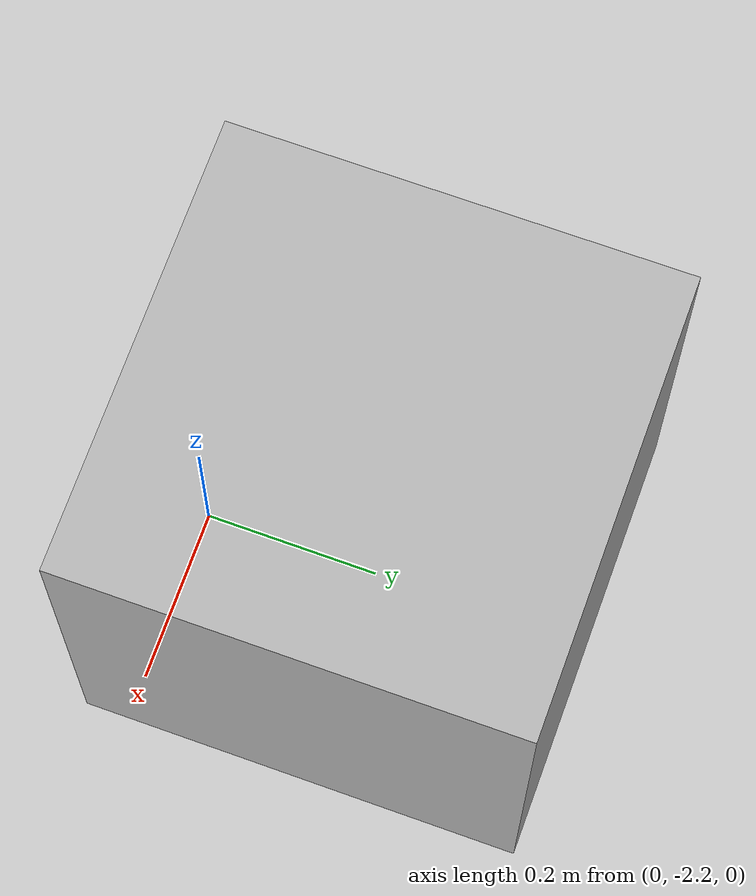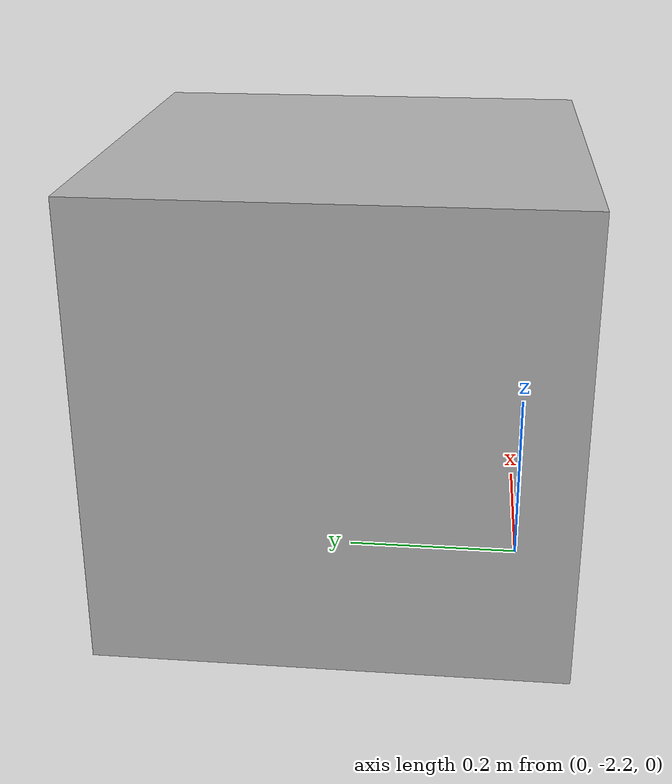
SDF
<?xml version="1.0"?>
<sdf version="1.5">
  <model name="noisy_distorted_camera">
  <pose>0 -2 0.25 0 0 1.57079633</pose>
  <static>false</static>
    <link name="camera_link">

      <visual name="visual">
        <geometry>
          <box>
            <size>0.5 0.5 0.5</size>
          </box>
        </geometry>
      </visual>

      <collision name="collision">
        <geometry>
          <box>
            <size>0.5 0.5 0.5</size>
          </box>
        </geometry>
      </collision>

      <sensor name="camera" type="camera">
        <camera>
          <horizontal_fov>1.047</horizontal_fov>

          <image>
            <width>1920</width>
            <height>1080</height>
            <format>R8G8B8</format>
          </image>

          <clip>
            <near>0.05</near>
            <far>100</far>
          </clip>

          <noise>
            <type>gaussian</type>
            <mean>0.0</mean>
            <stddev>0.01</stddev>
          </noise>

        </camera>

        <always_on>1</always_on>
        <update_rate>30</update_rate>
        <visualize>true</visualize>

        <plugin name="camera_controller" filename="libgazebo_ros_camera.so">
          <cameraName>camera</cameraName>
          <imageTopicName>image_raw</imageTopicName>
          <cameraInfoTopicName>camera_info</cameraInfoTopicName>
          <odometryTopic>odom</odometryTopic>
          <odometryFrame>odom</odometryFrame>                   <!-- header frame id -->
          <frameName>camera_frame</frameName>                   <!-- child  frame id -->
        </plugin>

      </sensor>
    </link>

    <plugin name="camera_move" filename="libgazebo_ros_planar_move.so">
      <commandTopic>camera_cmd_vel</commandTopic>
      <odometryTopic>odom</odometryTopic>
      <odometryFrame>odom</odometryFrame>                   <!-- header frame id -->
      <robotBaseFrame>camera_frame</robotBaseFrame>          <!-- child  frame id -->
    </plugin>

  </model>
</sdf>
